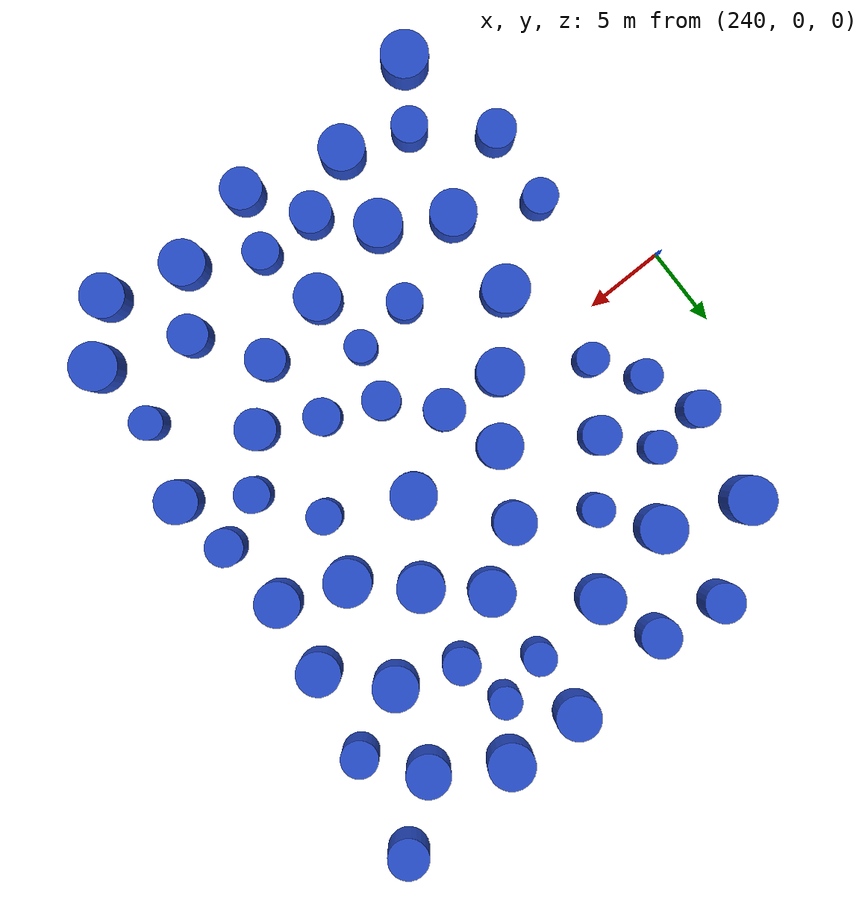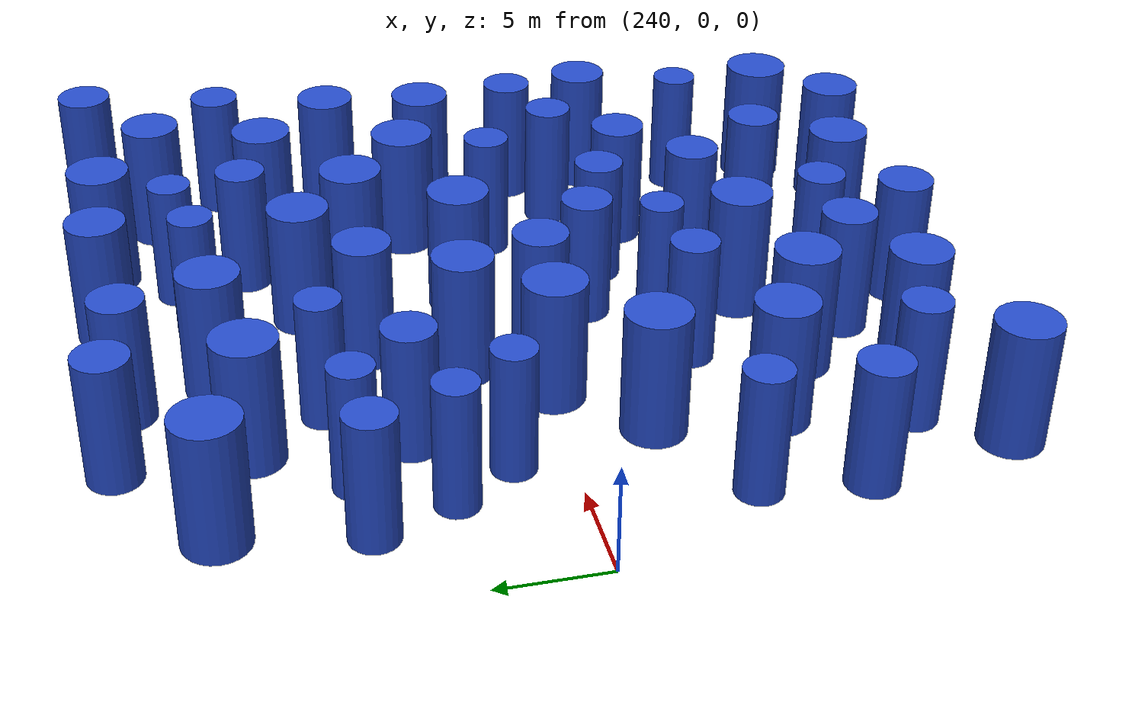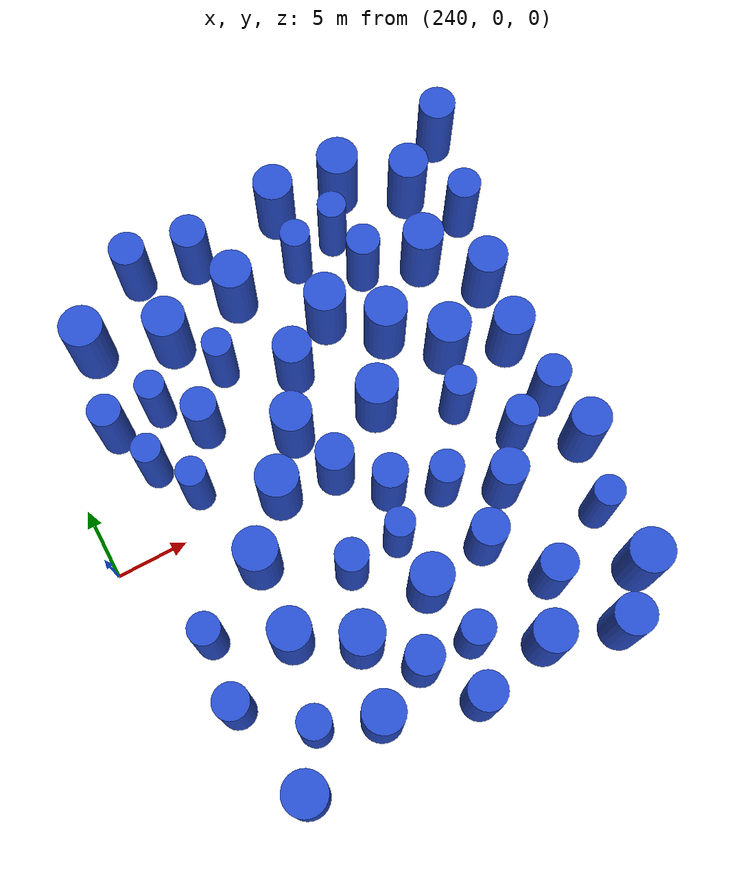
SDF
<sdf version="1.7">
 <world name="default">
  <model name="4">
   <static>1</static>
   <link name="link">
    <inertial>
     <mass>2</mass>
     <inertia><ixx>7.11213</ixx><ixy>0</ixy><ixz>0</ixz><iyy>7.11213</iyy><iyz>0</iyz><izz>2.22425</izz></inertia>
    </inertial>
    <collision name="collision">
     <geometry><cylinder><length>6</length><radius>1.49139</radius></cylinder></geometry>
     <surface><contact><collide_without_contact>1</collide_without_contact></contact></surface>
    </collision>
    <visual name="visual">
     <geometry><cylinder><length>6</length><radius>1.49139</radius></cylinder></geometry>
     <material>
      <script><uri>file://media/materials/scripts/gazebo.material</uri><name>Gazebo/Blue</name></script>
     </material>
    </visual>
    <gravity>0</gravity>
   </link>
   <pose>245.14 14.8871 3 0 -0 0</pose>
  </model>
  <model name="5">
   <static>1</static>
   <link name="link">
    <inertial>
     <mass>2</mass>
     <inertia><ixx>6.9315</ixx><ixy>0</ixy><ixz>0</ixz><iyy>6.9315</iyy><iyz>0</iyz><izz>1.863</izz></inertia>
    </inertial>
    <collision name="collision">
     <geometry><cylinder><length>6</length><radius>1.36492</radius></cylinder></geometry>
     <surface><contact><collide_without_contact>1</collide_without_contact></contact></surface>
    </collision>
    <visual name="visual">
     <geometry><cylinder><length>6</length><radius>1.36492</radius></cylinder></geometry>
     <material>
      <script><uri>file://media/materials/scripts/gazebo.material</uri><name>Gazebo/Blue</name></script>
     </material>
    </visual>
    <gravity>0</gravity>
   </link>
   <pose>271.563 6.85711 3 0 -0 0</pose>
  </model>
  <model name="9">
   <static>1</static>
   <link name="link">
    <inertial>
     <mass>2</mass>
     <inertia><ixx>6.71929</ixx><ixy>0</ixy><ixz>0</ixz><iyy>6.71929</iyy><iyz>0</iyz><izz>1.43859</izz></inertia>
    </inertial>
    <collision name="collision">
     <geometry><cylinder><length>6</length><radius>1.19941</radius></cylinder></geometry>
     <surface><contact><collide_without_contact>1</collide_without_contact></contact></surface>
    </collision>
    <visual name="visual">
     <geometry><cylinder><length>6</length><radius>1.19941</radius></cylinder></geometry>
     <material>
      <script><uri>file://media/materials/scripts/gazebo.material</uri><name>Gazebo/Blue</name></script>
     </material>
    </visual>
    <gravity>0</gravity>
   </link>
   <pose>249.674 6.32276 3 0 -0 0</pose>
  </model>
  <model name="10">
   <static>1</static>
   <link name="link">
    <inertial>
     <mass>2</mass>
     <inertia><ixx>6.77724</ixx><ixy>0</ixy><ixz>0</ixz><iyy>6.77724</iyy><iyz>0</iyz><izz>1.55448</izz></inertia>
    </inertial>
    <collision name="collision">
     <geometry><cylinder><length>6</length><radius>1.24679</radius></cylinder></geometry>
     <surface><contact><collide_without_contact>1</collide_without_contact></contact></surface>
    </collision>
    <visual name="visual">
     <geometry><cylinder><length>6</length><radius>1.24679</radius></cylinder></geometry>
     <material>
      <script><uri>file://media/materials/scripts/gazebo.material</uri><name>Gazebo/Blue</name></script>
     </material>
    </visual>
    <gravity>0</gravity>
   </link>
   <pose>262.364 -9.60499 3 0 -0 0</pose>
  </model>
  <model name="25">
   <static>1</static>
   <link name="link">
    <inertial>
     <mass>2</mass>
     <inertia><ixx>6.61631</ixx><ixy>0</ixy><ixz>0</ixz><iyy>6.61631</iyy><iyz>0</iyz><izz>1.23261</izz></inertia>
    </inertial>
    <collision name="collision">
     <geometry><cylinder><length>6</length><radius>1.11023</radius></cylinder></geometry>
     <surface><contact><collide_without_contact>1</collide_without_contact></contact></surface>
    </collision>
    <visual name="visual">
     <geometry><cylinder><length>6</length><radius>1.11023</radius></cylinder></geometry>
     <material>
      <script><uri>file://media/materials/scripts/gazebo.material</uri><name>Gazebo/Blue</name></script>
     </material>
    </visual>
    <gravity>0</gravity>
   </link>
   <pose>247.072 -15.0889 3 0 -0 0</pose>
  </model>
  <model name="50">
   <static>1</static>
   <link name="link">
    <inertial>
     <mass>2</mass>
     <inertia><ixx>6.6682</ixx><ixy>0</ixy><ixz>0</ixz><iyy>6.6682</iyy><iyz>0</iyz><izz>1.3364</izz></inertia>
    </inertial>
    <collision name="collision">
     <geometry><cylinder><length>6</length><radius>1.15603</radius></cylinder></geometry>
     <surface><contact><collide_without_contact>1</collide_without_contact></contact></surface>
    </collision>
    <visual name="visual">
     <geometry><cylinder><length>6</length><radius>1.15603</radius></cylinder></geometry>
     <material>
      <script><uri>file://media/materials/scripts/gazebo.material</uri><name>Gazebo/Blue</name></script>
     </material>
    </visual>
    <gravity>0</gravity>
   </link>
   <pose>264.638 11.7743 3 0 -0 0</pose>
  </model>
  <model name="69">
   <static>1</static>
   <link name="link">
    <inertial>
     <mass>2</mass>
     <inertia><ixx>6.76509</ixx><ixy>0</ixy><ixz>0</ixz><iyy>6.76509</iyy><iyz>0</iyz><izz>1.53017</izz></inertia>
    </inertial>
    <collision name="collision">
     <geometry><cylinder><length>6</length><radius>1.237</radius></cylinder></geometry>
     <surface><contact><collide_without_contact>1</collide_without_contact></contact></surface>
    </collision>
    <visual name="visual">
     <geometry><cylinder><length>6</length><radius>1.237</radius></cylinder></geometry>
     <material>
      <script><uri>file://media/materials/scripts/gazebo.material</uri><name>Gazebo/Blue</name></script>
     </material>
    </visual>
    <gravity>0</gravity>
   </link>
   <pose>254.411 17.871 3 0 -0 0</pose>
  </model>
  <model name="71">
   <static>1</static>
   <link name="link">
    <inertial>
     <mass>2</mass>
     <inertia><ixx>6.93486</ixx><ixy>0</ixy><ixz>0</ixz><iyy>6.93486</iyy><iyz>0</iyz><izz>1.86972</izz></inertia>
    </inertial>
    <collision name="collision">
     <geometry><cylinder><length>6</length><radius>1.36738</radius></cylinder></geometry>
     <surface><contact><collide_without_contact>1</collide_without_contact></contact></surface>
    </collision>
    <visual name="visual">
     <geometry><cylinder><length>6</length><radius>1.36738</radius></cylinder></geometry>
     <material>
      <script><uri>file://media/materials/scripts/gazebo.material</uri><name>Gazebo/Blue</name></script>
     </material>
    </visual>
    <gravity>0</gravity>
   </link>
   <pose>270.241 15.6398 3 0 -0 0</pose>
  </model>
  <model name="81">
   <static>1</static>
   <link name="link">
    <inertial>
     <mass>2</mass>
     <inertia><ixx>6.57695</ixx><ixy>0</ixy><ixz>0</ixz><iyy>6.57695</iyy><iyz>0</iyz><izz>1.15391</izz></inertia>
    </inertial>
    <collision name="collision">
     <geometry><cylinder><length>6</length><radius>1.0742</radius></cylinder></geometry>
     <surface><contact><collide_without_contact>1</collide_without_contact></contact></surface>
    </collision>
    <visual name="visual">
     <geometry><cylinder><length>6</length><radius>1.0742</radius></cylinder></geometry>
     <material>
      <script><uri>file://media/materials/scripts/gazebo.material</uri><name>Gazebo/Blue</name></script>
     </material>
    </visual>
    <gravity>0</gravity>
   </link>
   <pose>265.486 -0.173893 3 0 -0 0</pose>
  </model>
  <model name="85">
   <static>1</static>
   <link name="link">
    <inertial>
     <mass>2</mass>
     <inertia><ixx>6.96895</ixx><ixy>0</ixy><ixz>0</ixz><iyy>6.96895</iyy><iyz>0</iyz><izz>1.9379</izz></inertia>
    </inertial>
    <collision name="collision">
     <geometry><cylinder><length>6</length><radius>1.39208</radius></cylinder></geometry>
     <surface><contact><collide_without_contact>1</collide_without_contact></contact></surface>
    </collision>
    <visual name="visual">
     <geometry><cylinder><length>6</length><radius>1.39208</radius></cylinder></geometry>
     <material>
      <script><uri>file://media/materials/scripts/gazebo.material</uri><name>Gazebo/Blue</name></script>
     </material>
    </visual>
    <gravity>0</gravity>
   </link>
   <pose>254.747 3.08699 3 0 -0 0</pose>
  </model>
  <model name="86">
   <static>1</static>
   <link name="link">
    <inertial>
     <mass>2</mass>
     <inertia><ixx>6.98494</ixx><ixy>0</ixy><ixz>0</ixz><iyy>6.98494</iyy><iyz>0</iyz><izz>1.96989</izz></inertia>
    </inertial>
    <collision name="collision">
     <geometry><cylinder><length>6</length><radius>1.40353</radius></cylinder></geometry>
     <surface><contact><collide_without_contact>1</collide_without_contact></contact></surface>
    </collision>
    <visual name="visual">
     <geometry><cylinder><length>6</length><radius>1.40353</radius></cylinder></geometry>
     <material>
      <script><uri>file://media/materials/scripts/gazebo.material</uri><name>Gazebo/Blue</name></script>
     </material>
    </visual>
    <gravity>0</gravity>
   </link>
   <pose>262.633 -17.1305 3 0 -0 0</pose>
  </model>
  <model name="96">
   <static>1</static>
   <link name="link">
    <inertial>
     <mass>2</mass>
     <inertia><ixx>6.98704</ixx><ixy>0</ixy><ixz>0</ixz><iyy>6.98704</iyy><iyz>0</iyz><izz>1.97408</izz></inertia>
    </inertial>
    <collision name="collision">
     <geometry><cylinder><length>6</length><radius>1.40502</radius></cylinder></geometry>
     <surface><contact><collide_without_contact>1</collide_without_contact></contact></surface>
    </collision>
    <visual name="visual">
     <geometry><cylinder><length>6</length><radius>1.40502</radius></cylinder></geometry>
     <material>
      <script><uri>file://media/materials/scripts/gazebo.material</uri><name>Gazebo/Blue</name></script>
     </material>
    </visual>
    <gravity>0</gravity>
   </link>
   <pose>251.055 -16.5299 3 0 -0 0</pose>
  </model>
  <model name="102">
   <static>1</static>
   <link name="link">
    <inertial>
     <mass>2</mass>
     <inertia><ixx>7.06353</ixx><ixy>0</ixy><ixz>0</ixz><iyy>7.06353</iyy><iyz>0</iyz><izz>2.12706</izz></inertia>
    </inertial>
    <collision name="collision">
     <geometry><cylinder><length>6</length><radius>1.45844</radius></cylinder></geometry>
     <surface><contact><collide_without_contact>1</collide_without_contact></contact></surface>
    </collision>
    <visual name="visual">
     <geometry><cylinder><length>6</length><radius>1.45844</radius></cylinder></geometry>
     <material>
      <script><uri>file://media/materials/scripts/gazebo.material</uri><name>Gazebo/Blue</name></script>
     </material>
    </visual>
    <gravity>0</gravity>
   </link>
   <pose>263.674 6.71228 3 0 -0 0</pose>
  </model>
  <model name="107">
   <static>1</static>
   <link name="link">
    <inertial>
     <mass>2</mass>
     <inertia><ixx>6.99362</ixx><ixy>0</ixy><ixz>0</ixz><iyy>6.99362</iyy><iyz>0</iyz><izz>1.98725</izz></inertia>
    </inertial>
    <collision name="collision">
     <geometry><cylinder><length>6</length><radius>1.4097</radius></cylinder></geometry>
     <surface><contact><collide_without_contact>1</collide_without_contact></contact></surface>
    </collision>
    <visual name="visual">
     <geometry><cylinder><length>6</length><radius>1.4097</radius></cylinder></geometry>
     <material>
      <script><uri>file://media/materials/scripts/gazebo.material</uri><name>Gazebo/Blue</name></script>
     </material>
    </visual>
    <gravity>0</gravity>
   </link>
   <pose>268.536 10.3881 3 0 -0 0</pose>
  </model>
  <model name="113">
   <static>1</static>
   <link name="link">
    <inertial>
     <mass>2</mass>
     <inertia><ixx>6.53588</ixx><ixy>0</ixy><ixz>0</ixz><iyy>6.53588</iyy><iyz>0</iyz><izz>1.07176</izz></inertia>
    </inertial>
    <collision name="collision">
     <geometry><cylinder><length>6</length><radius>1.03526</radius></cylinder></geometry>
     <surface><contact><collide_without_contact>1</collide_without_contact></contact></surface>
    </collision>
    <visual name="visual">
     <geometry><cylinder><length>6</length><radius>1.03526</radius></cylinder></geometry>
     <material>
      <script><uri>file://media/materials/scripts/gazebo.material</uri><name>Gazebo/Blue</name></script>
     </material>
    </visual>
    <gravity>0</gravity>
   </link>
   <pose>270.216 -11.0762 3 0 -0 0</pose>
  </model>
  <model name="118">
   <static>1</static>
   <link name="link">
    <inertial>
     <mass>2</mass>
     <inertia><ixx>6.58126</ixx><ixy>0</ixy><ixz>0</ixz><iyy>6.58126</iyy><iyz>0</iyz><izz>1.16252</izz></inertia>
    </inertial>
    <collision name="collision">
     <geometry><cylinder><length>6</length><radius>1.0782</radius></cylinder></geometry>
     <surface><contact><collide_without_contact>1</collide_without_contact></contact></surface>
    </collision>
    <visual name="visual">
     <geometry><cylinder><length>6</length><radius>1.0782</radius></cylinder></geometry>
     <material>
      <script><uri>file://media/materials/scripts/gazebo.material</uri><name>Gazebo/Blue</name></script>
     </material>
    </visual>
    <gravity>0</gravity>
   </link>
   <pose>243.661 -6.96733 3 0 -0 0</pose>
  </model>
  <model name="139">
   <static>1</static>
   <link name="link">
    <inertial>
     <mass>2</mass>
     <inertia><ixx>6.67873</ixx><ixy>0</ixy><ixz>0</ixz><iyy>6.67873</iyy><iyz>0</iyz><izz>1.35745</izz></inertia>
    </inertial>
    <collision name="collision">
     <geometry><cylinder><length>6</length><radius>1.1651</radius></cylinder></geometry>
     <surface><contact><collide_without_contact>1</collide_without_contact></contact></surface>
    </collision>
    <visual name="visual">
     <geometry><cylinder><length>6</length><radius>1.1651</radius></cylinder></geometry>
     <material>
      <script><uri>file://media/materials/scripts/gazebo.material</uri><name>Gazebo/Blue</name></script>
     </material>
    </visual>
    <gravity>0</gravity>
   </link>
   <pose>271.235 -2.43836 3 0 -0 0</pose>
  </model>
  <model name="179">
   <static>1</static>
   <link name="link">
    <inertial>
     <mass>2</mass>
     <inertia><ixx>7.0083</ixx><ixy>0</ixy><ixz>0</ixz><iyy>7.0083</iyy><iyz>0</iyz><izz>2.01659</izz></inertia>
    </inertial>
    <collision name="collision">
     <geometry><cylinder><length>6</length><radius>1.42007</radius></cylinder></geometry>
     <surface><contact><collide_without_contact>1</collide_without_contact></contact></surface>
    </collision>
    <visual name="visual">
     <geometry><cylinder><length>6</length><radius>1.42007</radius></cylinder></geometry>
     <material>
      <script><uri>file://media/materials/scripts/gazebo.material</uri><name>Gazebo/Blue</name></script>
     </material>
    </visual>
    <gravity>0</gravity>
   </link>
   <pose>248.287 -9.40909 3 0 -0 0</pose>
  </model>
  <model name="182">
   <static>1</static>
   <link name="link">
    <inertial>
     <mass>2</mass>
     <inertia><ixx>6.6342</ixx><ixy>0</ixy><ixz>0</ixz><iyy>6.6342</iyy><iyz>0</iyz><izz>1.26841</izz></inertia>
    </inertial>
    <collision name="collision">
     <geometry><cylinder><length>6</length><radius>1.12624</radius></cylinder></geometry>
     <surface><contact><collide_without_contact>1</collide_without_contact></contact></surface>
    </collision>
    <visual name="visual">
     <geometry><cylinder><length>6</length><radius>1.12624</radius></cylinder></geometry>
     <material>
      <script><uri>file://media/materials/scripts/gazebo.material</uri><name>Gazebo/Blue</name></script>
     </material>
    </visual>
    <gravity>0</gravity>
   </link>
   <pose>244.079 8.78457 3 0 -0 0</pose>
  </model>
  <model name="191">
   <static>1</static>
   <link name="link">
    <inertial>
     <mass>2</mass>
     <inertia><ixx>6.89869</ixx><ixy>0</ixy><ixz>0</ixz><iyy>6.89869</iyy><iyz>0</iyz><izz>1.79738</izz></inertia>
    </inertial>
    <collision name="collision">
     <geometry><cylinder><length>6</length><radius>1.34066</radius></cylinder></geometry>
     <surface><contact><collide_without_contact>1</collide_without_contact></contact></surface>
    </collision>
    <visual name="visual">
     <geometry><cylinder><length>6</length><radius>1.34066</radius></cylinder></geometry>
     <material>
      <script><uri>file://media/materials/scripts/gazebo.material</uri><name>Gazebo/Blue</name></script>
     </material>
    </visual>
    <gravity>0</gravity>
   </link>
   <pose>271.765 -6.3196 3 0 -0 0</pose>
  </model>
  <model name="192">
   <static>1</static>
   <link name="link">
    <inertial>
     <mass>2</mass>
     <inertia><ixx>6.50456</ixx><ixy>0</ixy><ixz>0</ixz><iyy>6.50456</iyy><iyz>0</iyz><izz>1.00911</izz></inertia>
    </inertial>
    <collision name="collision">
     <geometry><cylinder><length>6</length><radius>1.00455</radius></cylinder></geometry>
     <surface><contact><collide_without_contact>1</collide_without_contact></contact></surface>
    </collision>
    <visual name="visual">
     <geometry><cylinder><length>6</length><radius>1.00455</radius></cylinder></geometry>
     <material>
      <script><uri>file://media/materials/scripts/gazebo.material</uri><name>Gazebo/Blue</name></script>
     </material>
    </visual>
    <gravity>0</gravity>
   </link>
   <pose>247.272 2.46444 3 0 -0 0</pose>
  </model>
  <model name="222">
   <static>1</static>
   <link name="link">
    <inertial>
     <mass>2</mass>
     <inertia><ixx>6.75823</ixx><ixy>0</ixy><ixz>0</ixz><iyy>6.75823</iyy><iyz>0</iyz><izz>1.51647</izz></inertia>
    </inertial>
    <collision name="collision">
     <geometry><cylinder><length>6</length><radius>1.23145</radius></cylinder></geometry>
     <surface><contact><collide_without_contact>1</collide_without_contact></contact></surface>
    </collision>
    <visual name="visual">
     <geometry><cylinder><length>6</length><radius>1.23145</radius></cylinder></geometry>
     <material>
      <script><uri>file://media/materials/scripts/gazebo.material</uri><name>Gazebo/Blue</name></script>
     </material>
    </visual>
    <gravity>0</gravity>
   </link>
   <pose>265.026 -13.5885 3 0 -0 0</pose>
  </model>
  <model name="234">
   <static>1</static>
   <link name="link">
    <inertial>
     <mass>2</mass>
     <inertia><ixx>6.69442</ixx><ixy>0</ixy><ixz>0</ixz><iyy>6.69442</iyy><iyz>0</iyz><izz>1.38883</izz></inertia>
    </inertial>
    <collision name="collision">
     <geometry><cylinder><length>6</length><radius>1.17849</radius></cylinder></geometry>
     <surface><contact><collide_without_contact>1</collide_without_contact></contact></surface>
    </collision>
    <visual name="visual">
     <geometry><cylinder><length>6</length><radius>1.17849</radius></cylinder></geometry>
     <material>
      <script><uri>file://media/materials/scripts/gazebo.material</uri><name>Gazebo/Blue</name></script>
     </material>
    </visual>
    <gravity>0</gravity>
   </link>
   <pose>258.547 -3.43049 3 0 -0 0</pose>
  </model>
  <model name="235">
   <static>1</static>
   <link name="link">
    <inertial>
     <mass>2</mass>
     <inertia><ixx>7.05068</ixx><ixy>0</ixy><ixz>0</ixz><iyy>7.05068</iyy><iyz>0</iyz><izz>2.10136</izz></inertia>
    </inertial>
    <collision name="collision">
     <geometry><cylinder><length>6</length><radius>1.44961</radius></cylinder></geometry>
     <surface><contact><collide_without_contact>1</collide_without_contact></contact></surface>
    </collision>
    <visual name="visual">
     <geometry><cylinder><length>6</length><radius>1.44961</radius></cylinder></geometry>
     <material>
      <script><uri>file://media/materials/scripts/gazebo.material</uri><name>Gazebo/Blue</name></script>
     </material>
    </visual>
    <gravity>0</gravity>
   </link>
   <pose>266.045 18.2766 3 0 -0 0</pose>
  </model>
  <model name="240">
   <static>1</static>
   <link name="link">
    <inertial>
     <mass>2</mass>
     <inertia><ixx>7.0678</ixx><ixy>0</ixy><ixz>0</ixz><iyy>7.0678</iyy><iyz>0</iyz><izz>2.13559</izz></inertia>
    </inertial>
    <collision name="collision">
     <geometry><cylinder><length>6</length><radius>1.46137</radius></cylinder></geometry>
     <surface><contact><collide_without_contact>1</collide_without_contact></contact></surface>
    </collision>
    <visual name="visual">
     <geometry><cylinder><length>6</length><radius>1.46137</radius></cylinder></geometry>
     <material>
      <script><uri>file://media/materials/scripts/gazebo.material</uri><name>Gazebo/Blue</name></script>
     </material>
    </visual>
    <gravity>0</gravity>
   </link>
   <pose>250.289 12.961 3 0 -0 0</pose>
  </model>
  <model name="242">
   <static>1</static>
   <link name="link">
    <inertial>
     <mass>2</mass>
     <inertia><ixx>7.04053</ixx><ixy>0</ixy><ixz>0</ixz><iyy>7.04053</iyy><iyz>0</iyz><izz>2.08107</izz></inertia>
    </inertial>
    <collision name="collision">
     <geometry><cylinder><length>6</length><radius>1.44259</radius></cylinder></geometry>
     <surface><contact><collide_without_contact>1</collide_without_contact></contact></surface>
    </collision>
    <visual name="visual">
     <geometry><cylinder><length>6</length><radius>1.44259</radius></cylinder></geometry>
     <material>
      <script><uri>file://media/materials/scripts/gazebo.material</uri><name>Gazebo/Blue</name></script>
     </material>
    </visual>
    <gravity>0</gravity>
   </link>
   <pose>251.987 -0.360757 3 0 -0 0</pose>
  </model>
  <model name="246">
   <static>1</static>
   <link name="link">
    <inertial>
     <mass>2</mass>
     <inertia><ixx>7.02536</ixx><ixy>0</ixy><ixz>0</ixz><iyy>7.02536</iyy><iyz>0</iyz><izz>2.05071</izz></inertia>
    </inertial>
    <collision name="collision">
     <geometry><cylinder><length>6</length><radius>1.43203</radius></cylinder></geometry>
     <surface><contact><collide_without_contact>1</collide_without_contact></contact></surface>
    </collision>
    <visual name="visual">
     <geometry><cylinder><length>6</length><radius>1.43203</radius></cylinder></geometry>
     <material>
      <script><uri>file://media/materials/scripts/gazebo.material</uri><name>Gazebo/Blue</name></script>
     </material>
    </visual>
    <gravity>0</gravity>
   </link>
   <pose>260.574 2.16418 3 0 -0 0</pose>
  </model>
  <model name="249">
   <static>1</static>
   <link name="link">
    <inertial>
     <mass>2</mass>
     <inertia><ixx>6.61975</ixx><ixy>0</ixy><ixz>0</ixz><iyy>6.61975</iyy><iyz>0</iyz><izz>1.23949</izz></inertia>
    </inertial>
    <collision name="collision">
     <geometry><cylinder><length>6</length><radius>1.11333</radius></cylinder></geometry>
     <surface><contact><collide_without_contact>1</collide_without_contact></contact></surface>
    </collision>
    <visual name="visual">
     <geometry><cylinder><length>6</length><radius>1.11333</radius></cylinder></geometry>
     <material>
      <script><uri>file://media/materials/scripts/gazebo.material</uri><name>Gazebo/Blue</name></script>
     </material>
    </visual>
    <gravity>0</gravity>
   </link>
   <pose>253.822 -7.12045 3 0 -0 0</pose>
  </model>
  <model name="263">
   <static>1</static>
   <link name="link">
    <inertial>
     <mass>2</mass>
     <inertia><ixx>7.0107</ixx><ixy>0</ixy><ixz>0</ixz><iyy>7.0107</iyy><iyz>0</iyz><izz>2.02141</izz></inertia>
    </inertial>
    <collision name="collision">
     <geometry><cylinder><length>6</length><radius>1.42176</radius></cylinder></geometry>
     <surface><contact><collide_without_contact>1</collide_without_contact></contact></surface>
    </collision>
    <visual name="visual">
     <geometry><cylinder><length>6</length><radius>1.42176</radius></cylinder></geometry>
     <material>
      <script><uri>file://media/materials/scripts/gazebo.material</uri><name>Gazebo/Blue</name></script>
     </material>
    </visual>
    <gravity>0</gravity>
   </link>
   <pose>260.556 9.55817 3 0 -0 0</pose>
  </model>
  <model name="272">
   <static>1</static>
   <link name="link">
    <inertial>
     <mass>2</mass>
     <inertia><ixx>6.71061</ixx><ixy>0</ixy><ixz>0</ixz><iyy>6.71061</iyy><iyz>0</iyz><izz>1.42122</izz></inertia>
    </inertial>
    <collision name="collision">
     <geometry><cylinder><length>6</length><radius>1.19215</radius></cylinder></geometry>
     <surface><contact><collide_without_contact>1</collide_without_contact></contact></surface>
    </collision>
    <visual name="visual">
     <geometry><cylinder><length>6</length><radius>1.19215</radius></cylinder></geometry>
     <material>
      <script><uri>file://media/materials/scripts/gazebo.material</uri><name>Gazebo/Blue</name></script>
     </material>
    </visual>
    <gravity>0</gravity>
   </link>
   <pose>243.201 -11.678 3 0 -0 0</pose>
  </model>
  <model name="275">
   <static>1</static>
   <link name="link">
    <inertial>
     <mass>2</mass>
     <inertia><ixx>7.02333</ixx><ixy>0</ixy><ixz>0</ixz><iyy>7.02333</iyy><iyz>0</iyz><izz>2.04666</izz></inertia>
    </inertial>
    <collision name="collision">
     <geometry><cylinder><length>6</length><radius>1.43061</radius></cylinder></geometry>
     <surface><contact><collide_without_contact>1</collide_without_contact></contact></surface>
    </collision>
    <visual name="visual">
     <geometry><cylinder><length>6</length><radius>1.43061</radius></cylinder></geometry>
     <material>
      <script><uri>file://media/materials/scripts/gazebo.material</uri><name>Gazebo/Blue</name></script>
     </material>
    </visual>
    <gravity>0</gravity>
   </link>
   <pose>257.673 -10.5449 3 0 -0 0</pose>
  </model>
  <model name="277">
   <static>1</static>
   <link name="link">
    <inertial>
     <mass>2</mass>
     <inertia><ixx>6.87017</ixx><ixy>0</ixy><ixz>0</ixz><iyy>6.87017</iyy><iyz>0</iyz><izz>1.74033</izz></inertia>
    </inertial>
    <collision name="collision">
     <geometry><cylinder><length>6</length><radius>1.31922</radius></cylinder></geometry>
     <surface><contact><collide_without_contact>1</collide_without_contact></contact></surface>
    </collision>
    <visual name="visual">
     <geometry><cylinder><length>6</length><radius>1.31922</radius></cylinder></geometry>
     <material>
      <script><uri>file://media/materials/scripts/gazebo.material</uri><name>Gazebo/Blue</name></script>
     </material>
    </visual>
    <gravity>0</gravity>
   </link>
   <pose>256.902 7.18526 3 0 -0 0</pose>
  </model>
  <model name="288">
   <static>1</static>
   <link name="link">
    <inertial>
     <mass>2</mass>
     <inertia><ixx>7.08012</ixx><ixy>0</ixy><ixz>0</ixz><iyy>7.08012</iyy><iyz>0</iyz><izz>2.16023</izz></inertia>
    </inertial>
    <collision name="collision">
     <geometry><cylinder><length>6</length><radius>1.46977</radius></cylinder></geometry>
     <surface><contact><collide_without_contact>1</collide_without_contact></contact></surface>
    </collision>
    <visual name="visual">
     <geometry><cylinder><length>6</length><radius>1.46977</radius></cylinder></geometry>
     <material>
      <script><uri>file://media/materials/scripts/gazebo.material</uri><name>Gazebo/Blue</name></script>
     </material>
    </visual>
    <gravity>0</gravity>
   </link>
   <pose>248.677 -3.9637 3 0 -0 0</pose>
  </model>
  <model name="293">
   <static>1</static>
   <link name="link">
    <inertial>
     <mass>2</mass>
     <inertia><ixx>7.10788</ixx><ixy>0</ixy><ixz>0</ixz><iyy>7.10788</iyy><iyz>0</iyz><izz>2.21576</izz></inertia>
    </inertial>
    <collision name="collision">
     <geometry><cylinder><length>6</length><radius>1.48854</radius></cylinder></geometry>
     <surface><contact><collide_without_contact>1</collide_without_contact></contact></surface>
    </collision>
    <visual name="visual">
     <geometry><cylinder><length>6</length><radius>1.48854</radius></cylinder></geometry>
     <material>
      <script><uri>file://media/materials/scripts/gazebo.material</uri><name>Gazebo/Blue</name></script>
     </material>
    </visual>
    <gravity>0</gravity>
   </link>
   <pose>270.566 -15.6274 3 0 -0 0</pose>
  </model>
  <model name="364">
   <static>1</static>
   <link name="link">
    <inertial>
     <mass>2</mass>
     <inertia><ixx>7.00888</ixx><ixy>0</ixy><ixz>0</ixz><iyy>7.00888</iyy><iyz>0</iyz><izz>2.01775</izz></inertia>
    </inertial>
    <collision name="collision">
     <geometry><cylinder><length>6</length><radius>1.42048</radius></cylinder></geometry>
     <surface><contact><collide_without_contact>1</collide_without_contact></contact></surface>
    </collision>
    <visual name="visual">
     <geometry><cylinder><length>6</length><radius>1.42048</radius></cylinder></geometry>
     <material>
      <script><uri>file://media/materials/scripts/gazebo.material</uri><name>Gazebo/Blue</name></script>
     </material>
    </visual>
    <gravity>0</gravity>
   </link>
   <pose>255.738 13.9746 3 0 -0 0</pose>
  </model>
  <model name="395">
   <static>1</static>
   <link name="link">
    <inertial>
     <mass>2</mass>
     <inertia><ixx>6.94754</ixx><ixy>0</ixy><ixz>0</ixz><iyy>6.94754</iyy><iyz>0</iyz><izz>1.89508</izz></inertia>
    </inertial>
    <collision name="collision">
     <geometry><cylinder><length>6</length><radius>1.37662</radius></cylinder></geometry>
     <surface><contact><collide_without_contact>1</collide_without_contact></contact></surface>
    </collision>
    <visual name="visual">
     <geometry><cylinder><length>6</length><radius>1.37662</radius></cylinder></geometry>
     <material>
      <script><uri>file://media/materials/scripts/gazebo.material</uri><name>Gazebo/Blue</name></script>
     </material>
    </visual>
    <gravity>0</gravity>
   </link>
   <pose>261.169 18.5264 3 0 -0 0</pose>
  </model>
  <model name="397">
   <static>1</static>
   <link name="link">
    <inertial>
     <mass>2</mass>
     <inertia><ixx>6.52207</ixx><ixy>0</ixy><ixz>0</ixz><iyy>6.52207</iyy><iyz>0</iyz><izz>1.04414</izz></inertia>
    </inertial>
    <collision name="collision">
     <geometry><cylinder><length>6</length><radius>1.02183</radius></cylinder></geometry>
     <surface><contact><collide_without_contact>1</collide_without_contact></contact></surface>
    </collision>
    <visual name="visual">
     <geometry><cylinder><length>6</length><radius>1.02183</radius></cylinder></geometry>
     <material>
      <script><uri>file://media/materials/scripts/gazebo.material</uri><name>Gazebo/Blue</name></script>
     </material>
    </visual>
    <gravity>0</gravity>
   </link>
   <pose>252.598 9.65507 3 0 -0 0</pose>
  </model>
  <model name="401">
   <static>1</static>
   <link name="link">
    <inertial>
     <mass>2</mass>
     <inertia><ixx>6.80637</ixx><ixy>0</ixy><ixz>0</ixz><iyy>6.80637</iyy><iyz>0</iyz><izz>1.61273</izz></inertia>
    </inertial>
    <collision name="collision">
     <geometry><cylinder><length>6</length><radius>1.26993</radius></cylinder></geometry>
     <surface><contact><collide_without_contact>1</collide_without_contact></contact></surface>
    </collision>
    <visual name="visual">
     <geometry><cylinder><length>6</length><radius>1.26993</radius></cylinder></geometry>
     <material>
      <script><uri>file://media/materials/scripts/gazebo.material</uri><name>Gazebo/Blue</name></script>
     </material>
    </visual>
    <gravity>0</gravity>
   </link>
   <pose>265.42 -6.74008 3 0 -0 0</pose>
  </model>
  <model name="408">
   <static>1</static>
   <link name="link">
    <inertial>
     <mass>2</mass>
     <inertia><ixx>6.81317</ixx><ixy>0</ixy><ixz>0</ixz><iyy>6.81317</iyy><iyz>0</iyz><izz>1.62635</izz></inertia>
    </inertial>
    <collision name="collision">
     <geometry><cylinder><length>6</length><radius>1.27528</radius></cylinder></geometry>
     <surface><contact><collide_without_contact>1</collide_without_contact></contact></surface>
    </collision>
    <visual name="visual">
     <geometry><cylinder><length>6</length><radius>1.27528</radius></cylinder></geometry>
     <material>
      <script><uri>file://media/materials/scripts/gazebo.material</uri><name>Gazebo/Blue</name></script>
     </material>
    </visual>
    <gravity>0</gravity>
   </link>
   <pose>257.187 -18.3636 3 0 -0 0</pose>
  </model>
  <model name="413">
   <static>1</static>
   <link name="link">
    <inertial>
     <mass>2</mass>
     <inertia><ixx>6.93931</ixx><ixy>0</ixy><ixz>0</ixz><iyy>6.93931</iyy><iyz>0</iyz><izz>1.87862</izz></inertia>
    </inertial>
    <collision name="collision">
     <geometry><cylinder><length>6</length><radius>1.37063</radius></cylinder></geometry>
     <surface><contact><collide_without_contact>1</collide_without_contact></contact></surface>
    </collision>
    <visual name="visual">
     <geometry><cylinder><length>6</length><radius>1.37063</radius></cylinder></geometry>
     <material>
      <script><uri>file://media/materials/scripts/gazebo.material</uri><name>Gazebo/Blue</name></script>
     </material>
    </visual>
    <gravity>0</gravity>
   </link>
   <pose>267.537 -18.5602 3 0 -0 0</pose>
  </model>
  <model name="414">
   <static>1</static>
   <link name="link">
    <inertial>
     <mass>2</mass>
     <inertia><ixx>6.75604</ixx><ixy>0</ixy><ixz>0</ixz><iyy>6.75604</iyy><iyz>0</iyz><izz>1.51208</izz></inertia>
    </inertial>
    <collision name="collision">
     <geometry><cylinder><length>6</length><radius>1.22967</radius></cylinder></geometry>
     <surface><contact><collide_without_contact>1</collide_without_contact></contact></surface>
    </collision>
    <visual name="visual">
     <geometry><cylinder><length>6</length><radius>1.22967</radius></cylinder></geometry>
     <material>
      <script><uri>file://media/materials/scripts/gazebo.material</uri><name>Gazebo/Blue</name></script>
     </material>
    </visual>
    <gravity>0</gravity>
   </link>
   <pose>250.181 18.6169 3 0 -0 0</pose>
  </model>
  <model name="419">
   <static>1</static>
   <link name="link">
    <inertial>
     <mass>2</mass>
     <inertia><ixx>7.07455</ixx><ixy>0</ixy><ixz>0</ixz><iyy>7.07455</iyy><iyz>0</iyz><izz>2.14911</izz></inertia>
    </inertial>
    <collision name="collision">
     <geometry><cylinder><length>6</length><radius>1.46598</radius></cylinder></geometry>
     <surface><contact><collide_without_contact>1</collide_without_contact></contact></surface>
    </collision>
    <visual name="visual">
     <geometry><cylinder><length>6</length><radius>1.46598</radius></cylinder></geometry>
     <material>
      <script><uri>file://media/materials/scripts/gazebo.material</uri><name>Gazebo/Blue</name></script>
     </material>
    </visual>
    <gravity>0</gravity>
   </link>
   <pose>252.146 -11.7061 3 0 -0 0</pose>
  </model>
  <model name="421">
   <static>1</static>
   <link name="link">
    <inertial>
     <mass>2</mass>
     <inertia><ixx>6.64635</ixx><ixy>0</ixy><ixz>0</ixz><iyy>6.64635</iyy><iyz>0</iyz><izz>1.2927</izz></inertia>
    </inertial>
    <collision name="collision">
     <geometry><cylinder><length>6</length><radius>1.13697</radius></cylinder></geometry>
     <surface><contact><collide_without_contact>1</collide_without_contact></contact></surface>
    </collision>
    <visual name="visual">
     <geometry><cylinder><length>6</length><radius>1.13697</radius></cylinder></geometry>
     <material>
      <script><uri>file://media/materials/scripts/gazebo.material</uri><name>Gazebo/Blue</name></script>
     </material>
    </visual>
    <gravity>0</gravity>
   </link>
   <pose>261.885 -4.86689 3 0 -0 0</pose>
  </model>
  <model name="424">
   <static>1</static>
   <link name="link">
    <inertial>
     <mass>2</mass>
     <inertia><ixx>6.52923</ixx><ixy>0</ixy><ixz>0</ixz><iyy>6.52923</iyy><iyz>0</iyz><izz>1.05847</izz></inertia>
    </inertial>
    <collision name="collision">
     <geometry><cylinder><length>6</length><radius>1.02882</radius></cylinder></geometry>
     <surface><contact><collide_without_contact>1</collide_without_contact></contact></surface>
    </collision>
    <visual name="visual">
     <geometry><cylinder><length>6</length><radius>1.02882</radius></cylinder></geometry>
     <material>
      <script><uri>file://media/materials/scripts/gazebo.material</uri><name>Gazebo/Blue</name></script>
     </material>
    </visual>
    <gravity>0</gravity>
   </link>
   <pose>260.763 14.3564 3 0 -0 0</pose>
  </model>
  <model name="425">
   <static>1</static>
   <link name="link">
    <inertial>
     <mass>2</mass>
     <inertia><ixx>7.07856</ixx><ixy>0</ixy><ixz>0</ixz><iyy>7.07856</iyy><iyz>0</iyz><izz>2.15711</izz></inertia>
    </inertial>
    <collision name="collision">
     <geometry><cylinder><length>6</length><radius>1.46871</radius></cylinder></geometry>
     <surface><contact><collide_without_contact>1</collide_without_contact></contact></surface>
    </collision>
    <visual name="visual">
     <geometry><cylinder><length>6</length><radius>1.46871</radius></cylinder></geometry>
     <material>
      <script><uri>file://media/materials/scripts/gazebo.material</uri><name>Gazebo/Blue</name></script>
     </material>
    </visual>
    <gravity>0</gravity>
   </link>
   <pose>266.858 3.73638 3 0 -0 0</pose>
  </model>
  <model name="446">
   <static>1</static>
   <link name="link">
    <inertial>
     <mass>2</mass>
     <inertia><ixx>6.63089</ixx><ixy>0</ixy><ixz>0</ixz><iyy>6.63089</iyy><iyz>0</iyz><izz>1.26177</izz></inertia>
    </inertial>
    <collision name="collision">
     <geometry><cylinder><length>6</length><radius>1.12329</radius></cylinder></geometry>
     <surface><contact><collide_without_contact>1</collide_without_contact></contact></surface>
    </collision>
    <visual name="visual">
     <geometry><cylinder><length>6</length><radius>1.12329</radius></cylinder></geometry>
     <material>
      <script><uri>file://media/materials/scripts/gazebo.material</uri><name>Gazebo/Blue</name></script>
     </material>
    </visual>
    <gravity>0</gravity>
   </link>
   <pose>258.582 -14.7514 3 0 -0 0</pose>
  </model>
  <model name="469">
   <static>1</static>
   <link name="link">
    <inertial>
     <mass>2</mass>
     <inertia><ixx>6.6066</ixx><ixy>0</ixy><ixz>0</ixz><iyy>6.6066</iyy><iyz>0</iyz><izz>1.21321</izz></inertia>
    </inertial>
    <collision name="collision">
     <geometry><cylinder><length>6</length><radius>1.10146</radius></cylinder></geometry>
     <surface><contact><collide_without_contact>1</collide_without_contact></contact></surface>
    </collision>
    <visual name="visual">
     <geometry><cylinder><length>6</length><radius>1.10146</radius></cylinder></geometry>
     <material>
      <script><uri>file://media/materials/scripts/gazebo.material</uri><name>Gazebo/Blue</name></script>
     </material>
    </visual>
    <gravity>0</gravity>
   </link>
   <pose>268.001 -3.84444 3 0 -0 0</pose>
  </model>
  <model name="477">
   <static>1</static>
   <link name="link">
    <inertial>
     <mass>2</mass>
     <inertia><ixx>6.66758</ixx><ixy>0</ixy><ixz>0</ixz><iyy>6.66758</iyy><iyz>0</iyz><izz>1.33516</izz></inertia>
    </inertial>
    <collision name="collision">
     <geometry><cylinder><length>6</length><radius>1.15549</radius></cylinder></geometry>
     <surface><contact><collide_without_contact>1</collide_without_contact></contact></surface>
    </collision>
    <visual name="visual">
     <geometry><cylinder><length>6</length><radius>1.15549</radius></cylinder></geometry>
     <material>
      <script><uri>file://media/materials/scripts/gazebo.material</uri><name>Gazebo/Blue</name></script>
     </material>
    </visual>
    <gravity>0</gravity>
   </link>
   <pose>272.798 12.3096 3 0 -0 0</pose>
  </model>
  <model name="494">
   <static>1</static>
   <link name="link">
    <inertial>
     <mass>2</mass>
     <inertia><ixx>6.80937</ixx><ixy>0</ixy><ixz>0</ixz><iyy>6.80937</iyy><iyz>0</iyz><izz>1.61874</izz></inertia>
    </inertial>
    <collision name="collision">
     <geometry><cylinder><length>6</length><radius>1.2723</radius></cylinder></geometry>
     <surface><contact><collide_without_contact>1</collide_without_contact></contact></surface>
    </collision>
    <visual name="visual">
     <geometry><cylinder><length>6</length><radius>1.2723</radius></cylinder></geometry>
     <material>
      <script><uri>file://media/materials/scripts/gazebo.material</uri><name>Gazebo/Blue</name></script>
     </material>
    </visual>
    <gravity>0</gravity>
   </link>
   <pose>274.22 18.7097 3 0 -0 0</pose>
  </model>
  <model name="496">
   <static>1</static>
   <link name="link">
    <inertial>
     <mass>2</mass>
     <inertia><ixx>7.06676</ixx><ixy>0</ixy><ixz>0</ixz><iyy>7.06676</iyy><iyz>0</iyz><izz>2.13353</izz></inertia>
    </inertial>
    <collision name="collision">
     <geometry><cylinder><length>6</length><radius>1.46066</radius></cylinder></geometry>
     <surface><contact><collide_without_contact>1</collide_without_contact></contact></surface>
    </collision>
    <visual name="visual">
     <geometry><cylinder><length>6</length><radius>1.46066</radius></cylinder></geometry>
     <material>
      <script><uri>file://media/materials/scripts/gazebo.material</uri><name>Gazebo/Blue</name></script>
     </material>
    </visual>
    <gravity>0</gravity>
   </link>
   <pose>244.704 -18.5104 3 0 -0 0</pose>
  </model>
  <model name="538">
   <static>1</static>
   <link name="link">
    <inertial>
     <mass>2</mass>
     <inertia><ixx>6.5</ixx><ixy>0</ixy><ixz>0</ixz><iyy>6.5</iyy><iyz>0</iyz><izz>1</izz></inertia>
    </inertial>
    <collision name="collision">
     <geometry><cylinder><length>6</length><radius>1</radius></cylinder></geometry>
     <surface><contact><collide_without_contact>1</collide_without_contact></contact></surface>
    </collision>
    <visual name="visual">
     <geometry><cylinder><length>6</length><radius>1</radius></cylinder></geometry>
     <material>
      <script><uri>file://media/materials/scripts/gazebo.material</uri><name>Gazebo/Blue</name></script>
     </material>
    </visual>
    <gravity>0</gravity>
   </link>
   <pose>257.496 -6.68162 3 0 -0 0</pose>
  </model>
  <model name="539">
   <static>1</static>
   <link name="link">
    <inertial>
     <mass>2</mass>
     <inertia><ixx>6.50903</ixx><ixy>0</ixy><ixz>0</ixz><iyy>6.50903</iyy><iyz>0</iyz><izz>1.01806</izz></inertia>
    </inertial>
    <collision name="collision">
     <geometry><cylinder><length>6</length><radius>1.00899</radius></cylinder></geometry>
     <surface><contact><collide_without_contact>1</collide_without_contact></contact></surface>
    </collision>
    <visual name="visual">
     <geometry><cylinder><length>6</length><radius>1.00899</radius></cylinder></geometry>
     <material>
      <script><uri>file://media/materials/scripts/gazebo.material</uri><name>Gazebo/Blue</name></script>
     </material>
    </visual>
    <gravity>0</gravity>
   </link>
   <pose>247.431 9.02512 3 0 -0 0</pose>
  </model>
  <model name="546">
   <static>1</static>
   <link name="link">
    <inertial>
     <mass>2</mass>
     <inertia><ixx>6.5</ixx><ixy>0</ixy><ixz>0</ixz><iyy>6.5</iyy><iyz>0</iyz><izz>1</izz></inertia>
    </inertial>
    <collision name="collision">
     <geometry><cylinder><length>6</length><radius>1</radius></cylinder></geometry>
     <surface><contact><collide_without_contact>1</collide_without_contact></contact></surface>
    </collision>
    <visual name="visual">
     <geometry><cylinder><length>6</length><radius>1</radius></cylinder></geometry>
     <material>
      <script><uri>file://media/materials/scripts/gazebo.material</uri><name>Gazebo/Blue</name></script>
     </material>
    </visual>
    <gravity>0</gravity>
   </link>
   <pose>245.413 5.20498 3 0 -0 0</pose>
  </model>
  <model name="548">
   <static>1</static>
   <link name="link">
    <inertial>
     <mass>2</mass>
     <inertia><ixx>6.81743</ixx><ixy>0</ixy><ixz>0</ixz><iyy>6.81743</iyy><iyz>0</iyz><izz>1.63485</izz></inertia>
    </inertial>
    <collision name="collision">
     <geometry><cylinder><length>6</length><radius>1.27861</radius></cylinder></geometry>
     <surface><contact><collide_without_contact>1</collide_without_contact></contact></surface>
    </collision>
    <visual name="visual">
     <geometry><cylinder><length>6</length><radius>1.27861</radius></cylinder></geometry>
     <material>
      <script><uri>file://media/materials/scripts/gazebo.material</uri><name>Gazebo/Blue</name></script>
     </material>
    </visual>
    <gravity>0</gravity>
   </link>
   <pose>255.978 -0.66543 3 0 -0 0</pose>
  </model>
  <model name="553">
   <static>1</static>
   <link name="link">
    <inertial>
     <mass>2</mass>
     <inertia><ixx>6.5</ixx><ixy>0</ixy><ixz>0</ixz><iyy>6.5</iyy><iyz>0</iyz><izz>1</izz></inertia>
    </inertial>
    <collision name="collision">
     <geometry><cylinder><length>6</length><radius>1</radius></cylinder></geometry>
     <surface><contact><collide_without_contact>1</collide_without_contact></contact></surface>
    </collision>
    <visual name="visual">
     <geometry><cylinder><length>6</length><radius>1</radius></cylinder></geometry>
     <material>
      <script><uri>file://media/materials/scripts/gazebo.material</uri><name>Gazebo/Blue</name></script>
     </material>
    </visual>
    <gravity>0</gravity>
   </link>
   <pose>263.958 15.1059 3 0 -0 0</pose>
  </model>
  <model name="563">
   <static>1</static>
   <link name="link">
    <inertial>
     <mass>2</mass>
     <inertia><ixx>6.9714</ixx><ixy>0</ixy><ixz>0</ixz><iyy>6.9714</iyy><iyz>0</iyz><izz>1.9428</izz></inertia>
    </inertial>
    <collision name="collision">
     <geometry><cylinder><length>6</length><radius>1.39385</radius></cylinder></geometry>
     <surface><contact><collide_without_contact>1</collide_without_contact></contact></surface>
    </collision>
    <visual name="visual">
     <geometry><cylinder><length>6</length><radius>1.39385</radius></cylinder></geometry>
     <material>
      <script><uri>file://media/materials/scripts/gazebo.material</uri><name>Gazebo/Blue</name></script>
     </material>
    </visual>
    <gravity>0</gravity>
   </link>
   <pose>270.887 2.1369 3 0 -0 0</pose>
  </model>
  <model name="567">
   <static>1</static>
   <link name="link">
    <inertial>
     <mass>2</mass>
     <inertia><ixx>6.80427</ixx><ixy>0</ixy><ixz>0</ixz><iyy>6.80427</iyy><iyz>0</iyz><izz>1.60854</izz></inertia>
    </inertial>
    <collision name="collision">
     <geometry><cylinder><length>6</length><radius>1.26828</radius></cylinder></geometry>
     <surface><contact><collide_without_contact>1</collide_without_contact></contact></surface>
    </collision>
    <visual name="visual">
     <geometry><cylinder><length>6</length><radius>1.26828</radius></cylinder></geometry>
     <material>
      <script><uri>file://media/materials/scripts/gazebo.material</uri><name>Gazebo/Blue</name></script>
     </material>
    </visual>
    <gravity>0</gravity>
   </link>
   <pose>254.862 -14.7064 3 0 -0 0</pose>
  </model>
 </world>
</sdf>
